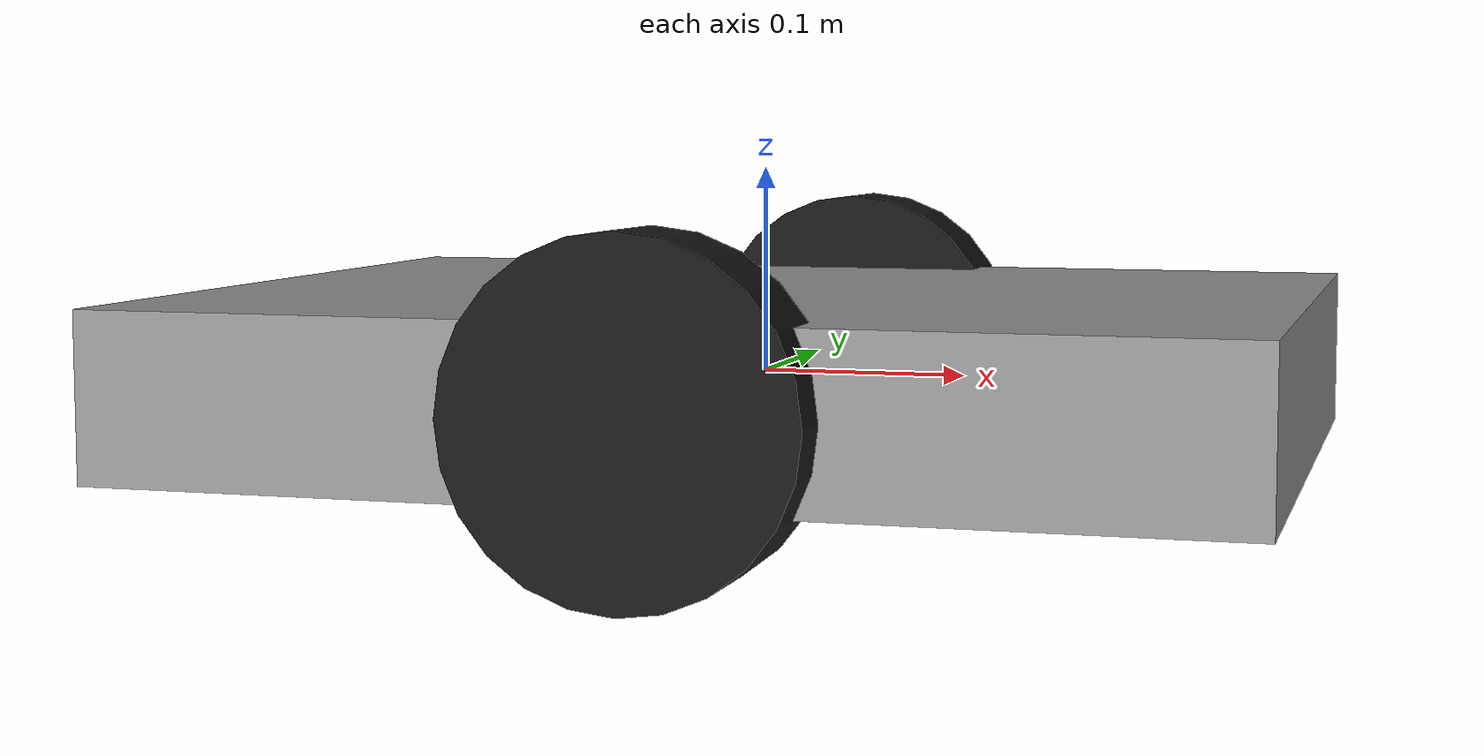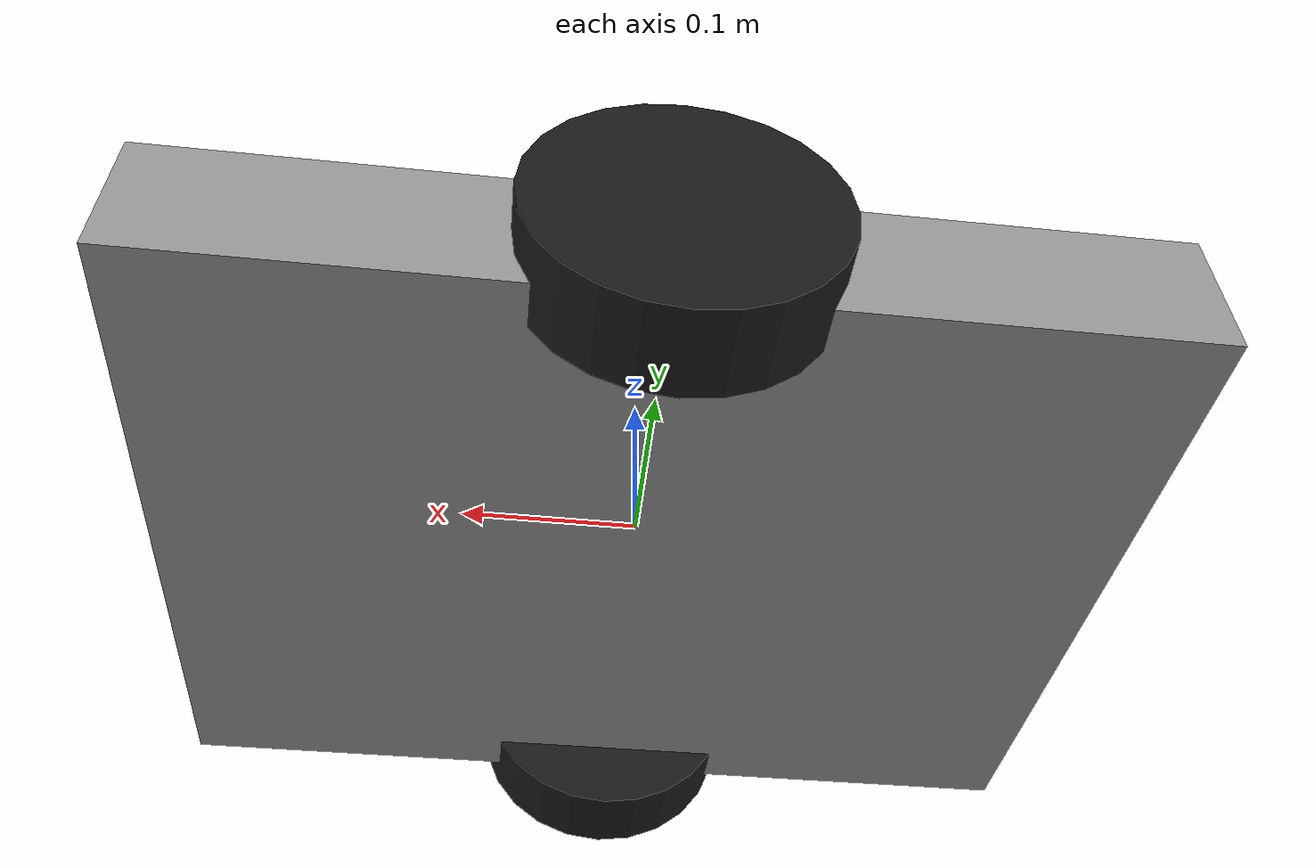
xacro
<?xml version="1.0"?>
<robot name="robot_base" xmlns:xacro="http://www.ros.org/wiki/xacro">

  <!-- ============== Parámetros geométricos (AJUSTAR a tu robot real) ============== -->
  <xacro:property name="wheel_radius" value="0.08"/>
  <xacro:property name="wheel_separation" value="0.40"/>
  <xacro:property name="wheel_width" value="0.05"/>
  <xacro:property name="base_length" value="0.53"/>
  <xacro:property name="base_width" value="0.40"/>
  <xacro:property name="base_height" value="0.08"/>

  <material name="gris"><color rgba="0.6 0.6 0.6 1.0"/></material>
  <material name="negro"><color rgba="0.1 0.1 0.1 1.0"/></material>

  <!-- ============== base_link ============== -->
  <link name="base_link">
    <visual>
      <geometry><box size="${base_length} ${base_width} ${base_height}"/></geometry>
      <material name="gris"/>
    </visual>
    <collision>
      <geometry><box size="${base_length} ${base_width} ${base_height}"/></geometry>
    </collision>
    <inertial>
      <mass value="2.0"/>
      <inertia ixx="0.01" ixy="0" ixz="0" iyy="0.01" iyz="0" izz="0.01"/>
    </inertial>
  </link>

  <!-- ============== Ruedas ============== -->
  <xacro:macro name="wheel" params="prefix reflect">
    <link name="wheel_${prefix}_link">
      <visual>
        <geometry><cylinder radius="${wheel_radius}" length="${wheel_width}"/></geometry>
        <origin rpy="1.5708 0 0" xyz="0 0 0"/>
        <material name="negro"/>
      </visual>
      <collision>
        <geometry><cylinder radius="${wheel_radius}" length="${wheel_width}"/></geometry>
        <origin rpy="1.5708 0 0" xyz="0 0 0"/>
      </collision>
      <inertial>
        <!--mass value="0.2"/-->
        <mass value="5"/>
        <inertia ixx="0.0005" ixy="0" ixz="0" iyy="0.0005" iyz="0" izz="0.0005"/>
      </inertial>
    </link>

    <joint name="wheel_${prefix}_joint" type="continuous">
      <parent link="base_link"/>
      <child link="wheel_${prefix}_link"/>
      <origin xyz="0 ${reflect * wheel_separation / 2.0} 0" rpy="0 0 0"/>
      <axis xyz="0 1 0"/>
    </joint>
  </xacro:macro>

  <xacro:wheel prefix="left" reflect="1"/>
  <xacro:wheel prefix="right" reflect="-1"/>

  <!-- ============== Lidar ============== -->
  <!-- El driver ldlidar_node publica por su cuenta ldlidar_base -> ldlidar_link.
       Aquí solo definimos dónde va montado el lidar respecto al centro del robot.
       AJUSTAR xyz a tu montaje real. -->
  <link name="ldlidar_base"/>

  <joint name="ldlidar_base_joint" type="fixed">
    <parent link="base_link"/>
    <child link="ldlidar_base"/>
    <!--origin xyz="0.08 0 0.10" rpy="0 0 0"/-->
    <origin xyz="0.05 0 0.12" rpy="0 0 0"/>
  </joint>

</robot>
